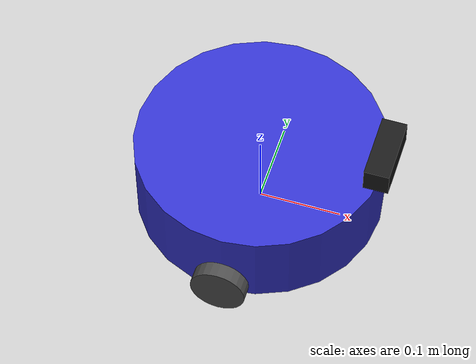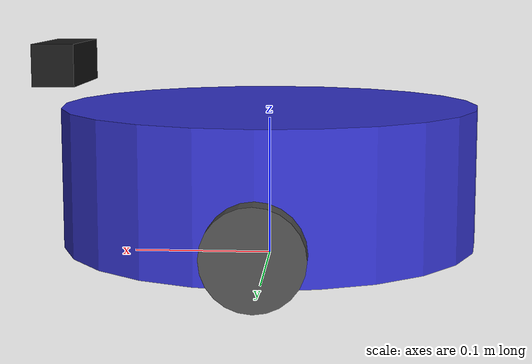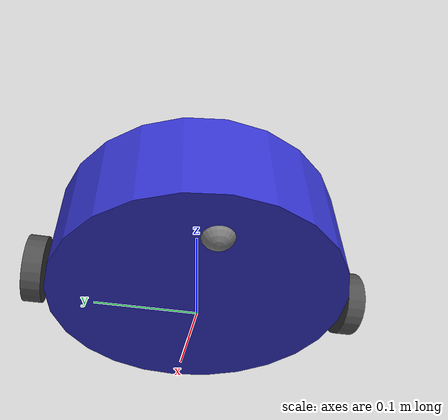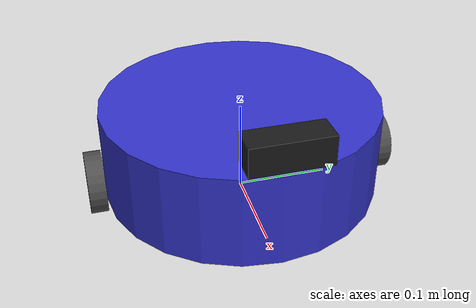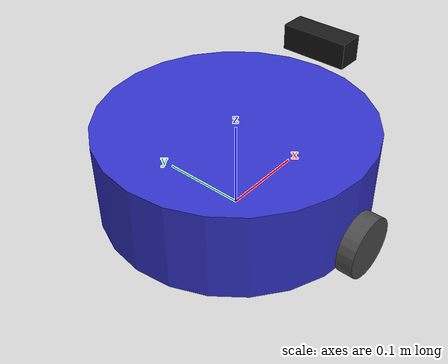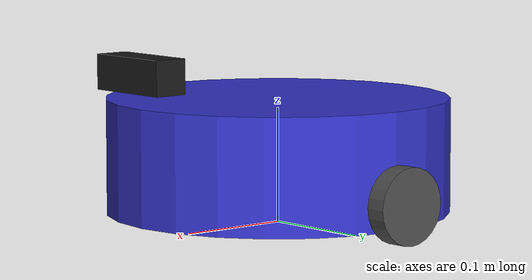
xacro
<?xml version="1.0"?>
<robot xmlns:xacro="http://www.ros.org/wiki/xacro" name="docking_robot">

  <!-- Base footprint -->
  <link name="base_footprint"/>

  <!-- Base link -->
  <link name="base_link">
    <visual>
      <geometry>
        <cylinder radius="0.15" length="0.1"/>
      </geometry>
      <material name="blue">
        <color rgba="0.2 0.2 0.8 1"/>
      </material>
    </visual>
    <collision>
      <geometry>
        <cylinder radius="0.15" length="0.1"/>
      </geometry>
    </collision>
    <inertial>
      <mass value="1.0"/>
      <inertia ixx="0.00208" ixy="0.0" ixz="0.0"
               iyy="0.00208" iyz="0.0" izz="0.00375"/>
    </inertial>
  </link>

  <joint name="base_joint" type="fixed">
    <parent link="base_footprint"/>
    <child link="base_link"/>
    <origin xyz="0 0 0.06"/>
  </joint>

  <!-- Camera link -->
  <link name="camera_link">
    <visual>
      <geometry>
        <box size="0.03 0.08 0.03"/>
      </geometry>
      <material name="black">
        <color rgba="0.1 0.1 0.1 1"/>
      </material>
    </visual>
    <collision>
      <geometry>
        <box size="0.03 0.08 0.03"/>
      </geometry>
    </collision>
    <inertial>
      <mass value="0.05"/>
      <inertia ixx="0.00001" ixy="0.0" ixz="0.0"
               iyy="0.00001" iyz="0.0" izz="0.00001"/>
    </inertial>
  </link>

  <joint name="camera_joint" type="fixed">
    <parent link="base_link"/>
    <child link="camera_link"/>
    <origin xyz="0.15 0 0.08" rpy="0 0 0"/>
  </joint>

  <!-- Camera optical frame -->
  <link name="camera_optical_frame"/>

  <joint name="camera_optical_joint" type="fixed">
    <parent link="camera_link"/>
    <child link="camera_optical_frame"/>
    <origin xyz="0 0 0" rpy="${-pi/2} 0 ${-pi/2}"/>
  </joint>

  <!-- Left wheel -->
  <link name="left_wheel">
    <visual>
      <geometry>
        <cylinder radius="0.033" length="0.018"/>
      </geometry>
      <origin xyz="0 0 0" rpy="${pi/2} 0 0"/>
      <material name="dark_grey">
        <color rgba="0.3 0.3 0.3 1"/>
      </material>
    </visual>
    <collision>
      <geometry>
        <cylinder radius="0.033" length="0.018"/>
      </geometry>
      <origin xyz="0 0 0" rpy="${pi/2} 0 0"/>
    </collision>
    <inertial>
      <mass value="0.1"/>
      <inertia ixx="0.00001" ixy="0.0" ixz="0.0"
               iyy="0.00001" iyz="0.0" izz="0.00001"/>
    </inertial>
  </link>

  <joint name="left_wheel_joint" type="continuous">
    <parent link="base_link"/>
    <child link="left_wheel"/>
    <origin xyz="0 0.16 -0.027" rpy="0 0 0"/>
    <axis xyz="0 1 0"/>
  </joint>

  <!-- Right wheel -->
  <link name="right_wheel">
    <visual>
      <geometry>
        <cylinder radius="0.033" length="0.018"/>
      </geometry>
      <origin xyz="0 0 0" rpy="${pi/2} 0 0"/>
      <material name="dark_grey">
        <color rgba="0.3 0.3 0.3 1"/>
      </material>
    </visual>
    <collision>
      <geometry>
        <cylinder radius="0.033" length="0.018"/>
      </geometry>
      <origin xyz="0 0 0" rpy="${pi/2} 0 0"/>
    </collision>
    <inertial>
      <mass value="0.1"/>
      <inertia ixx="0.00001" ixy="0.0" ixz="0.0"
               iyy="0.00001" iyz="0.0" izz="0.00001"/>
    </inertial>
  </link>

  <joint name="right_wheel_joint" type="continuous">
    <parent link="base_link"/>
    <child link="right_wheel"/>
    <origin xyz="0 -0.16 -0.027" rpy="0 0 0"/>
    <axis xyz="0 1 0"/>
  </joint>

  <!-- Caster wheel -->
  <link name="caster">
    <visual>
      <geometry>
        <sphere radius="0.017"/>
      </geometry>
      <material name="grey">
        <color rgba="0.5 0.5 0.5 1"/>
      </material>
    </visual>
    <collision>
      <geometry>
        <sphere radius="0.017"/>
      </geometry>
    </collision>
    <inertial>
      <mass value="0.05"/>
      <inertia ixx="0.00001" ixy="0.0" ixz="0.0"
               iyy="0.00001" iyz="0.0" izz="0.00001"/>
    </inertial>
  </link>

  <joint name="caster_joint" type="fixed">
    <parent link="base_link"/>
    <child link="caster"/>
    <origin xyz="-0.10 0 -0.043" rpy="0 0 0"/>
  </joint>

  <!-- Gazebo plugins -->
  <gazebo>
    <plugin filename="gz-sim-diff-drive-system" name="gz::sim::systems::DiffDrive">
      <left_joint>left_wheel_joint</left_joint>
      <right_joint>right_wheel_joint</right_joint>
      <wheel_separation>0.32</wheel_separation>
      <wheel_radius>0.033</wheel_radius>
      <odom_publish_frequency>50</odom_publish_frequency>
      <topic>/cmd_vel</topic>
      <odom_topic>/odom</odom_topic>
      <frame_id>odom</frame_id>
      <child_frame_id>base_footprint</child_frame_id>
    </plugin>
  </gazebo>

  <!-- Camera sensor -->
  <gazebo reference="camera_link">
    <sensor name="camera" type="camera">
      <camera>
        <horizontal_fov>1.3962634</horizontal_fov>
        <image>
          <width>640</width>
          <height>480</height>
          <format>R8G8B8</format>
        </image>
        <clip>
          <near>0.02</near>
          <far>300</far>
        </clip>
        <noise>
          <type>gaussian</type>
          <mean>0.0</mean>
          <stddev>0.007</stddev>
        </noise>
      </camera>
      <always_on>1</always_on>
      <update_rate>30</update_rate>
      <visualize>true</visualize>
      <topic>camera/image_raw</topic>
    </sensor>
  </gazebo>

  <!-- Friction definitions -->
  <gazebo reference="left_wheel">
    <mu1>1.0</mu1>
    <mu2>1.0</mu2>
  </gazebo>
  <gazebo reference="right_wheel">
    <mu1>1.0</mu1>
    <mu2>1.0</mu2>
  </gazebo>
  <gazebo reference="caster">
    <mu1>0.0</mu1>
    <mu2>0.0</mu2>
  </gazebo>

</robot>
